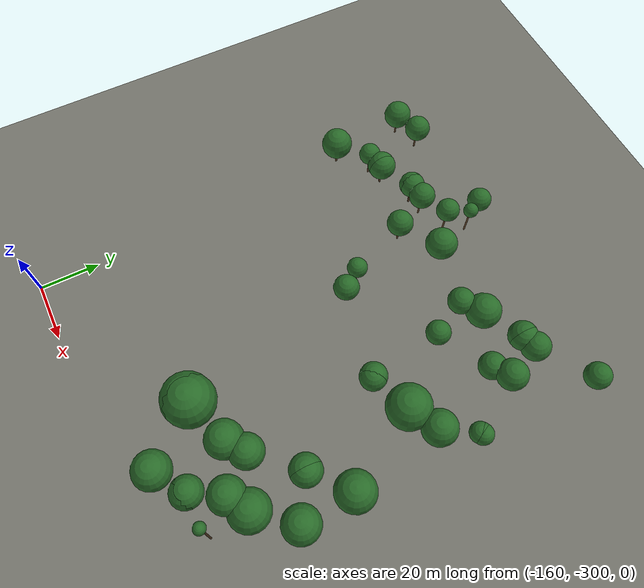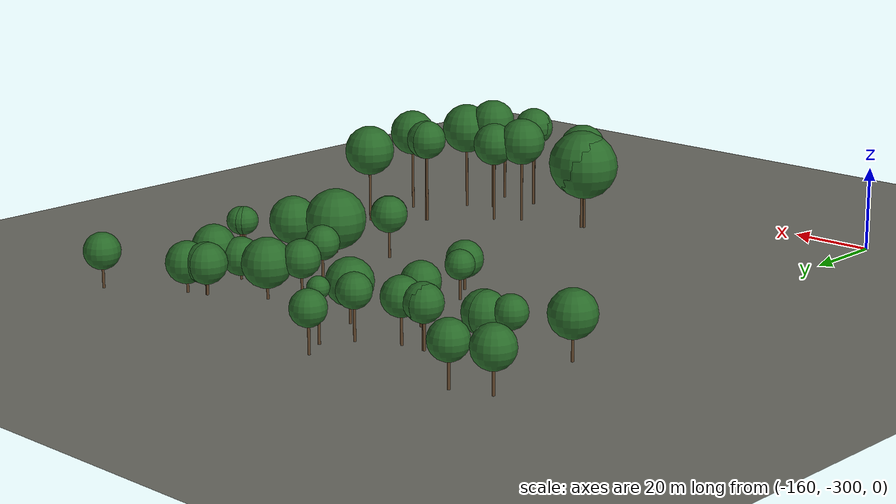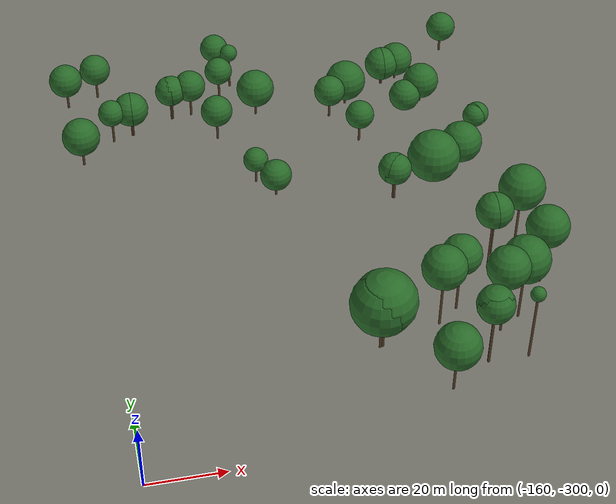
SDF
<sdf version="1.9">
 <world name="uav_arena_bk">
  <model name="ground_plane">
   <static>true</static>
   <link name="link">
    <collision name="collision">
     <geometry><plane><normal>0 0 1</normal><size>1200 1200</size></plane></geometry>
    </collision>
    <visual name="visual">
     <geometry><plane><normal>0 0 1</normal><size>1200 1200</size></plane></geometry>
     <material><ambient>0.35 0.35 0.33 1</ambient><diffuse>0.45 0.45 0.42 1</diffuse></material>
    </visual>
   </link>
  </model>
  <model name="tree_365">
   <static>true</static>
   <pose>-120.744 -154.964 0 0 0 0</pose>
   <link name="link">
    <collision name="trunk_collision">
     <pose>0 0 2.945 0 0 0</pose>
     <geometry><cylinder><radius>0.30</radius><length>5.890</length></cylinder></geometry>
    </collision>
    <visual name="trunk_visual">
     <pose>0 0 2.945 0 0 0</pose>
     <geometry><cylinder><radius>0.30</radius><length>5.890</length></cylinder></geometry>
     <material><ambient>0.25 0.18 0.11 1</ambient><diffuse>0.35 0.25 0.15 1</diffuse></material>
    </visual>
    <collision name="canopy_collision">
     <pose>0 0 9.890 0 0 0</pose>
     <geometry><sphere><radius>4.000</radius></sphere></geometry>
    </collision>
    <visual name="canopy_visual">
     <pose>0 0 9.890 0 0 0</pose>
     <geometry><sphere><radius>4.000</radius></sphere></geometry>
     <material><ambient>0.10 0.28 0.10 1</ambient><diffuse>0.16 0.42 0.16 1</diffuse></material>
     <plugin filename="gz-sim-label-system" name="gz::sim::systems::Label"><label>2</label></plugin>
    </visual>
   </link>
  </model>
  <model name="tree_366">
   <static>true</static>
   <pose>-51.749 -155.837 0 0 0 0</pose>
   <link name="link">
    <collision name="trunk_collision">
     <pose>0 0 2.195 0 0 0</pose>
     <geometry><cylinder><radius>0.30</radius><length>4.390</length></cylinder></geometry>
    </collision>
    <visual name="trunk_visual">
     <pose>0 0 2.195 0 0 0</pose>
     <geometry><cylinder><radius>0.30</radius><length>4.390</length></cylinder></geometry>
     <material><ambient>0.25 0.18 0.11 1</ambient><diffuse>0.35 0.25 0.15 1</diffuse></material>
    </visual>
    <collision name="canopy_collision">
     <pose>0 0 8.660 0 0 0</pose>
     <geometry><sphere><radius>4.270</radius></sphere></geometry>
    </collision>
    <visual name="canopy_visual">
     <pose>0 0 8.660 0 0 0</pose>
     <geometry><sphere><radius>4.270</radius></sphere></geometry>
     <material><ambient>0.10 0.28 0.10 1</ambient><diffuse>0.16 0.42 0.16 1</diffuse></material>
     <plugin filename="gz-sim-label-system" name="gz::sim::systems::Label"><label>2</label></plugin>
    </visual>
   </link>
  </model>
  <model name="tree_372">
   <static>true</static>
   <pose>-156.265 -158.772 0 0 0 0</pose>
   <link name="link">
    <collision name="trunk_collision">
     <pose>0 0 2.865 0 0 0</pose>
     <geometry><cylinder><radius>0.30</radius><length>5.730</length></cylinder></geometry>
    </collision>
    <visual name="trunk_visual">
     <pose>0 0 2.865 0 0 0</pose>
     <geometry><cylinder><radius>0.30</radius><length>5.730</length></cylinder></geometry>
     <material><ambient>0.25 0.18 0.11 1</ambient><diffuse>0.35 0.25 0.15 1</diffuse></material>
    </visual>
    <collision name="canopy_collision">
     <pose>0 0 10.100 0 0 0</pose>
     <geometry><sphere><radius>4.370</radius></sphere></geometry>
    </collision>
    <visual name="canopy_visual">
     <pose>0 0 10.100 0 0 0</pose>
     <geometry><sphere><radius>4.370</radius></sphere></geometry>
     <material><ambient>0.10 0.28 0.10 1</ambient><diffuse>0.16 0.42 0.16 1</diffuse></material>
     <plugin filename="gz-sim-label-system" name="gz::sim::systems::Label"><label>2</label></plugin>
    </visual>
   </link>
  </model>
  <model name="tree_376">
   <static>true</static>
   <pose>-117.277 -160.983 0 0 0 0</pose>
   <link name="link">
    <collision name="trunk_collision">
     <pose>0 0 4.850 0 0 0</pose>
     <geometry><cylinder><radius>0.30</radius><length>9.700</length></cylinder></geometry>
    </collision>
    <visual name="trunk_visual">
     <pose>0 0 4.850 0 0 0</pose>
     <geometry><cylinder><radius>0.30</radius><length>9.700</length></cylinder></geometry>
     <material><ambient>0.25 0.18 0.11 1</ambient><diffuse>0.35 0.25 0.15 1</diffuse></material>
    </visual>
    <collision name="canopy_collision">
     <pose>0 0 12.160 0 0 0</pose>
     <geometry><sphere><radius>2.460</radius></sphere></geometry>
    </collision>
    <visual name="canopy_visual">
     <pose>0 0 12.160 0 0 0</pose>
     <geometry><sphere><radius>2.460</radius></sphere></geometry>
     <material><ambient>0.10 0.28 0.10 1</ambient><diffuse>0.16 0.42 0.16 1</diffuse></material>
     <plugin filename="gz-sim-label-system" name="gz::sim::systems::Label"><label>2</label></plugin>
    </visual>
   </link>
  </model>
  <model name="tree_378">
   <static>true</static>
   <pose>-165.032 -161.974 0 0 0 0</pose>
   <link name="link">
    <collision name="trunk_collision">
     <pose>0 0 2.575 0 0 0</pose>
     <geometry><cylinder><radius>0.30</radius><length>5.150</length></cylinder></geometry>
    </collision>
    <visual name="trunk_visual">
     <pose>0 0 2.575 0 0 0</pose>
     <geometry><cylinder><radius>0.30</radius><length>5.150</length></cylinder></geometry>
     <material><ambient>0.25 0.18 0.11 1</ambient><diffuse>0.35 0.25 0.15 1</diffuse></material>
    </visual>
    <collision name="canopy_collision">
     <pose>0 0 9.850 0 0 0</pose>
     <geometry><sphere><radius>4.700</radius></sphere></geometry>
    </collision>
    <visual name="canopy_visual">
     <pose>0 0 9.850 0 0 0</pose>
     <geometry><sphere><radius>4.700</radius></sphere></geometry>
     <material><ambient>0.10 0.28 0.10 1</ambient><diffuse>0.16 0.42 0.16 1</diffuse></material>
     <plugin filename="gz-sim-label-system" name="gz::sim::systems::Label"><label>2</label></plugin>
    </visual>
   </link>
  </model>
  <model name="tree_380">
   <static>true</static>
   <pose>-68.307 -166.498 0 0 0 0</pose>
   <link name="link">
    <collision name="trunk_collision">
     <pose>0 0 1.075 0 0 0</pose>
     <geometry><cylinder><radius>0.30</radius><length>2.150</length></cylinder></geometry>
    </collision>
    <visual name="trunk_visual">
     <pose>0 0 1.075 0 0 0</pose>
     <geometry><cylinder><radius>0.30</radius><length>2.150</length></cylinder></geometry>
     <material><ambient>0.25 0.18 0.11 1</ambient><diffuse>0.35 0.25 0.15 1</diffuse></material>
    </visual>
    <collision name="canopy_collision">
     <pose>0 0 6.980 0 0 0</pose>
     <geometry><sphere><radius>4.830</radius></sphere></geometry>
    </collision>
    <visual name="canopy_visual">
     <pose>0 0 6.980 0 0 0</pose>
     <geometry><sphere><radius>4.830</radius></sphere></geometry>
     <material><ambient>0.10 0.28 0.10 1</ambient><diffuse>0.16 0.42 0.16 1</diffuse></material>
     <plugin filename="gz-sim-label-system" name="gz::sim::systems::Label"><label>2</label></plugin>
    </visual>
   </link>
  </model>
  <model name="tree_381">
   <static>true</static>
   <pose>-121.311 -167.211 0 0 0 0</pose>
   <link name="link">
    <collision name="trunk_collision">
     <pose>0 0 3.545 0 0 0</pose>
     <geometry><cylinder><radius>0.30</radius><length>7.090</length></cylinder></geometry>
    </collision>
    <visual name="trunk_visual">
     <pose>0 0 3.545 0 0 0</pose>
     <geometry><cylinder><radius>0.30</radius><length>7.090</length></cylinder></geometry>
     <material><ambient>0.25 0.18 0.11 1</ambient><diffuse>0.35 0.25 0.15 1</diffuse></material>
    </visual>
    <collision name="canopy_collision">
     <pose>0 0 11.000 0 0 0</pose>
     <geometry><sphere><radius>3.910</radius></sphere></geometry>
    </collision>
    <visual name="canopy_visual">
     <pose>0 0 11.000 0 0 0</pose>
     <geometry><sphere><radius>3.910</radius></sphere></geometry>
     <material><ambient>0.10 0.28 0.10 1</ambient><diffuse>0.16 0.42 0.16 1</diffuse></material>
     <plugin filename="gz-sim-label-system" name="gz::sim::systems::Label"><label>2</label></plugin>
    </visual>
   </link>
  </model>
  <model name="tree_382">
   <static>true</static>
   <pose>-73.066 -168.222 0 0 0 0</pose>
   <link name="link">
    <collision name="trunk_collision">
     <pose>0 0 1.285 0 0 0</pose>
     <geometry><cylinder><radius>0.30</radius><length>2.570</length></cylinder></geometry>
    </collision>
    <visual name="trunk_visual">
     <pose>0 0 1.285 0 0 0</pose>
     <geometry><cylinder><radius>0.30</radius><length>2.570</length></cylinder></geometry>
     <material><ambient>0.25 0.18 0.11 1</ambient><diffuse>0.35 0.25 0.15 1</diffuse></material>
    </visual>
    <collision name="canopy_collision">
     <pose>0 0 7.310 0 0 0</pose>
     <geometry><sphere><radius>4.740</radius></sphere></geometry>
    </collision>
    <visual name="canopy_visual">
     <pose>0 0 7.310 0 0 0</pose>
     <geometry><sphere><radius>4.740</radius></sphere></geometry>
     <material><ambient>0.10 0.28 0.10 1</ambient><diffuse>0.16 0.42 0.16 1</diffuse></material>
     <plugin filename="gz-sim-label-system" name="gz::sim::systems::Label"><label>2</label></plugin>
    </visual>
   </link>
  </model>
  <model name="tree_383">
   <static>true</static>
   <pose>-72.816 -168.224 0 0 0 0</pose>
   <link name="link">
    <collision name="trunk_collision">
     <pose>0 0 1.285 0 0 0</pose>
     <geometry><cylinder><radius>0.30</radius><length>2.570</length></cylinder></geometry>
    </collision>
    <visual name="trunk_visual">
     <pose>0 0 1.285 0 0 0</pose>
     <geometry><cylinder><radius>0.30</radius><length>2.570</length></cylinder></geometry>
     <material><ambient>0.25 0.18 0.11 1</ambient><diffuse>0.35 0.25 0.15 1</diffuse></material>
    </visual>
    <collision name="canopy_collision">
     <pose>0 0 7.310 0 0 0</pose>
     <geometry><sphere><radius>4.740</radius></sphere></geometry>
    </collision>
    <visual name="canopy_visual">
     <pose>0 0 7.310 0 0 0</pose>
     <geometry><sphere><radius>4.740</radius></sphere></geometry>
     <material><ambient>0.10 0.28 0.10 1</ambient><diffuse>0.16 0.42 0.16 1</diffuse></material>
     <plugin filename="gz-sim-label-system" name="gz::sim::systems::Label"><label>2</label></plugin>
    </visual>
   </link>
  </model>
  <model name="tree_389">
   <static>true</static>
   <pose>-130.336 -171.912 0 0 0 0</pose>
   <link name="link">
    <collision name="trunk_collision">
     <pose>0 0 3.080 0 0 0</pose>
     <geometry><cylinder><radius>0.30</radius><length>6.160</length></cylinder></geometry>
    </collision>
    <visual name="trunk_visual">
     <pose>0 0 3.080 0 0 0</pose>
     <geometry><cylinder><radius>0.30</radius><length>6.160</length></cylinder></geometry>
     <material><ambient>0.25 0.18 0.11 1</ambient><diffuse>0.35 0.25 0.15 1</diffuse></material>
    </visual>
    <collision name="canopy_collision">
     <pose>0 0 10.580 0 0 0</pose>
     <geometry><sphere><radius>4.420</radius></sphere></geometry>
    </collision>
    <visual name="canopy_visual">
     <pose>0 0 10.580 0 0 0</pose>
     <geometry><sphere><radius>4.420</radius></sphere></geometry>
     <material><ambient>0.10 0.28 0.10 1</ambient><diffuse>0.16 0.42 0.16 1</diffuse></material>
     <plugin filename="gz-sim-label-system" name="gz::sim::systems::Label"><label>2</label></plugin>
    </visual>
   </link>
  </model>
  <model name="tree_391">
   <static>true</static>
   <pose>-136.090 -172.631 0 0 0 0</pose>
   <link name="link">
    <collision name="trunk_collision">
     <pose>0 0 2.975 0 0 0</pose>
     <geometry><cylinder><radius>0.30</radius><length>5.950</length></cylinder></geometry>
    </collision>
    <visual name="trunk_visual">
     <pose>0 0 2.975 0 0 0</pose>
     <geometry><cylinder><radius>0.30</radius><length>5.950</length></cylinder></geometry>
     <material><ambient>0.25 0.18 0.11 1</ambient><diffuse>0.35 0.25 0.15 1</diffuse></material>
    </visual>
    <collision name="canopy_collision">
     <pose>0 0 10.210 0 0 0</pose>
     <geometry><sphere><radius>4.260</radius></sphere></geometry>
    </collision>
    <visual name="canopy_visual">
     <pose>0 0 10.210 0 0 0</pose>
     <geometry><sphere><radius>4.260</radius></sphere></geometry>
     <material><ambient>0.10 0.28 0.10 1</ambient><diffuse>0.16 0.42 0.16 1</diffuse></material>
     <plugin filename="gz-sim-label-system" name="gz::sim::systems::Label"><label>2</label></plugin>
    </visual>
   </link>
  </model>
  <model name="tree_392">
   <static>true</static>
   <pose>-135.840 -172.632 0 0 0 0</pose>
   <link name="link">
    <collision name="trunk_collision">
     <pose>0 0 3.005 0 0 0</pose>
     <geometry><cylinder><radius>0.30</radius><length>6.010</length></cylinder></geometry>
    </collision>
    <visual name="trunk_visual">
     <pose>0 0 3.005 0 0 0</pose>
     <geometry><cylinder><radius>0.30</radius><length>6.010</length></cylinder></geometry>
     <material><ambient>0.25 0.18 0.11 1</ambient><diffuse>0.35 0.25 0.15 1</diffuse></material>
    </visual>
    <collision name="canopy_collision">
     <pose>0 0 10.270 0 0 0</pose>
     <geometry><sphere><radius>4.260</radius></sphere></geometry>
    </collision>
    <visual name="canopy_visual">
     <pose>0 0 10.270 0 0 0</pose>
     <geometry><sphere><radius>4.260</radius></sphere></geometry>
     <material><ambient>0.10 0.28 0.10 1</ambient><diffuse>0.16 0.42 0.16 1</diffuse></material>
     <plugin filename="gz-sim-label-system" name="gz::sim::systems::Label"><label>2</label></plugin>
    </visual>
   </link>
  </model>
  <model name="tree_393">
   <static>true</static>
   <pose>-111.853 -175.012 0 0 0 0</pose>
   <link name="link">
    <collision name="trunk_collision">
     <pose>0 0 2.000 0 0 0</pose>
     <geometry><cylinder><radius>0.30</radius><length>4.000</length></cylinder></geometry>
    </collision>
    <visual name="trunk_visual">
     <pose>0 0 2.000 0 0 0</pose>
     <geometry><cylinder><radius>0.30</radius><length>4.000</length></cylinder></geometry>
     <material><ambient>0.25 0.18 0.11 1</ambient><diffuse>0.35 0.25 0.15 1</diffuse></material>
    </visual>
    <collision name="canopy_collision">
     <pose>0 0 9.320 0 0 0</pose>
     <geometry><sphere><radius>5.320</radius></sphere></geometry>
    </collision>
    <visual name="canopy_visual">
     <pose>0 0 9.320 0 0 0</pose>
     <geometry><sphere><radius>5.320</radius></sphere></geometry>
     <material><ambient>0.10 0.28 0.10 1</ambient><diffuse>0.16 0.42 0.16 1</diffuse></material>
     <plugin filename="gz-sim-label-system" name="gz::sim::systems::Label"><label>2</label></plugin>
    </visual>
   </link>
  </model>
  <model name="tree_394">
   <static>true</static>
   <pose>-85.354 -175.156 0 0 0 0</pose>
   <link name="link">
    <collision name="trunk_collision">
     <pose>0 0 1.310 0 0 0</pose>
     <geometry><cylinder><radius>0.30</radius><length>2.620</length></cylinder></geometry>
    </collision>
    <visual name="trunk_visual">
     <pose>0 0 1.310 0 0 0</pose>
     <geometry><cylinder><radius>0.30</radius><length>2.620</length></cylinder></geometry>
     <material><ambient>0.25 0.18 0.11 1</ambient><diffuse>0.35 0.25 0.15 1</diffuse></material>
    </visual>
    <collision name="canopy_collision">
     <pose>0 0 8.330 0 0 0</pose>
     <geometry><sphere><radius>5.710</radius></sphere></geometry>
    </collision>
    <visual name="canopy_visual">
     <pose>0 0 8.330 0 0 0</pose>
     <geometry><sphere><radius>5.710</radius></sphere></geometry>
     <material><ambient>0.10 0.28 0.10 1</ambient><diffuse>0.16 0.42 0.16 1</diffuse></material>
     <plugin filename="gz-sim-label-system" name="gz::sim::systems::Label"><label>2</label></plugin>
    </visual>
   </link>
  </model>
  <model name="tree_396">
   <static>true</static>
   <pose>-148.118 -177.816 0 0 0 0</pose>
   <link name="link">
    <collision name="trunk_collision">
     <pose>0 0 2.385 0 0 0</pose>
     <geometry><cylinder><radius>0.30</radius><length>4.770</length></cylinder></geometry>
    </collision>
    <visual name="trunk_visual">
     <pose>0 0 2.385 0 0 0</pose>
     <geometry><cylinder><radius>0.30</radius><length>4.770</length></cylinder></geometry>
     <material><ambient>0.25 0.18 0.11 1</ambient><diffuse>0.35 0.25 0.15 1</diffuse></material>
    </visual>
    <collision name="canopy_collision">
     <pose>0 0 9.520 0 0 0</pose>
     <geometry><sphere><radius>4.750</radius></sphere></geometry>
    </collision>
    <visual name="canopy_visual">
     <pose>0 0 9.520 0 0 0</pose>
     <geometry><sphere><radius>4.750</radius></sphere></geometry>
     <material><ambient>0.10 0.28 0.10 1</ambient><diffuse>0.16 0.42 0.16 1</diffuse></material>
     <plugin filename="gz-sim-label-system" name="gz::sim::systems::Label"><label>2</label></plugin>
    </visual>
   </link>
  </model>
  <model name="tree_397">
   <static>true</static>
   <pose>-147.868 -177.817 0 0 0 0</pose>
   <link name="link">
    <collision name="trunk_collision">
     <pose>0 0 2.385 0 0 0</pose>
     <geometry><cylinder><radius>0.30</radius><length>4.770</length></cylinder></geometry>
    </collision>
    <visual name="trunk_visual">
     <pose>0 0 2.385 0 0 0</pose>
     <geometry><cylinder><radius>0.30</radius><length>4.770</length></cylinder></geometry>
     <material><ambient>0.25 0.18 0.11 1</ambient><diffuse>0.35 0.25 0.15 1</diffuse></material>
    </visual>
    <collision name="canopy_collision">
     <pose>0 0 9.520 0 0 0</pose>
     <geometry><sphere><radius>4.750</radius></sphere></geometry>
    </collision>
    <visual name="canopy_visual">
     <pose>0 0 9.520 0 0 0</pose>
     <geometry><sphere><radius>4.750</radius></sphere></geometry>
     <material><ambient>0.10 0.28 0.10 1</ambient><diffuse>0.16 0.42 0.16 1</diffuse></material>
     <plugin filename="gz-sim-label-system" name="gz::sim::systems::Label"><label>2</label></plugin>
    </visual>
   </link>
  </model>
  <model name="tree_398">
   <static>true</static>
   <pose>-63.620 -178.273 0 0 0 0</pose>
   <link name="link">
    <collision name="trunk_collision">
     <pose>0 0 1.195 0 0 0</pose>
     <geometry><cylinder><radius>0.30</radius><length>2.390</length></cylinder></geometry>
    </collision>
    <visual name="trunk_visual">
     <pose>0 0 1.195 0 0 0</pose>
     <geometry><cylinder><radius>0.30</radius><length>2.390</length></cylinder></geometry>
     <material><ambient>0.25 0.18 0.11 1</ambient><diffuse>0.35 0.25 0.15 1</diffuse></material>
    </visual>
    <collision name="canopy_collision">
     <pose>0 0 7.450 0 0 0</pose>
     <geometry><sphere><radius>5.060</radius></sphere></geometry>
    </collision>
    <visual name="canopy_visual">
     <pose>0 0 7.450 0 0 0</pose>
     <geometry><sphere><radius>5.060</radius></sphere></geometry>
     <material><ambient>0.10 0.28 0.10 1</ambient><diffuse>0.16 0.42 0.16 1</diffuse></material>
     <plugin filename="gz-sim-label-system" name="gz::sim::systems::Label"><label>2</label></plugin>
    </visual>
   </link>
  </model>
  <model name="tree_399">
   <static>true</static>
   <pose>-153.627 -179.536 0 0 0 0</pose>
   <link name="link">
    <collision name="trunk_collision">
     <pose>0 0 3.355 0 0 0</pose>
     <geometry><cylinder><radius>0.30</radius><length>6.710</length></cylinder></geometry>
    </collision>
    <visual name="trunk_visual">
     <pose>0 0 3.355 0 0 0</pose>
     <geometry><cylinder><radius>0.30</radius><length>6.710</length></cylinder></geometry>
     <material><ambient>0.25 0.18 0.11 1</ambient><diffuse>0.35 0.25 0.15 1</diffuse></material>
    </visual>
    <collision name="canopy_collision">
     <pose>0 0 10.400 0 0 0</pose>
     <geometry><sphere><radius>3.690</radius></sphere></geometry>
    </collision>
    <visual name="canopy_visual">
     <pose>0 0 10.400 0 0 0</pose>
     <geometry><sphere><radius>3.690</radius></sphere></geometry>
     <material><ambient>0.10 0.28 0.10 1</ambient><diffuse>0.16 0.42 0.16 1</diffuse></material>
     <plugin filename="gz-sim-label-system" name="gz::sim::systems::Label"><label>2</label></plugin>
    </visual>
   </link>
  </model>
  <model name="tree_400">
   <static>true</static>
   <pose>-91.131 -180.124 0 0 0 0</pose>
   <link name="link">
    <collision name="trunk_collision">
     <pose>0 0 2.490 0 0 0</pose>
     <geometry><cylinder><radius>0.30</radius><length>4.980</length></cylinder></geometry>
    </collision>
    <visual name="trunk_visual">
     <pose>0 0 2.490 0 0 0</pose>
     <geometry><cylinder><radius>0.30</radius><length>4.980</length></cylinder></geometry>
     <material><ambient>0.25 0.18 0.11 1</ambient><diffuse>0.35 0.25 0.15 1</diffuse></material>
    </visual>
    <collision name="canopy_collision">
     <pose>0 0 9.350 0 0 0</pose>
     <geometry><sphere><radius>4.370</radius></sphere></geometry>
    </collision>
    <visual name="canopy_visual">
     <pose>0 0 9.350 0 0 0</pose>
     <geometry><sphere><radius>4.370</radius></sphere></geometry>
     <material><ambient>0.10 0.28 0.10 1</ambient><diffuse>0.16 0.42 0.16 1</diffuse></material>
     <plugin filename="gz-sim-label-system" name="gz::sim::systems::Label"><label>2</label></plugin>
    </visual>
   </link>
  </model>
  <model name="tree_402">
   <static>true</static>
   <pose>-69.138 -181.494 0 0 0 0</pose>
   <link name="link">
    <collision name="trunk_collision">
     <pose>0 0 0.500 0 0 0</pose>
     <geometry><cylinder><radius>0.30</radius><length>1.000</length></cylinder></geometry>
    </collision>
    <visual name="trunk_visual">
     <pose>0 0 0.500 0 0 0</pose>
     <geometry><cylinder><radius>0.30</radius><length>1.000</length></cylinder></geometry>
     <material><ambient>0.25 0.18 0.11 1</ambient><diffuse>0.35 0.25 0.15 1</diffuse></material>
    </visual>
    <collision name="canopy_collision">
     <pose>0 0 5.470 0 0 0</pose>
     <geometry><sphere><radius>4.470</radius></sphere></geometry>
    </collision>
    <visual name="canopy_visual">
     <pose>0 0 5.470 0 0 0</pose>
     <geometry><sphere><radius>4.470</radius></sphere></geometry>
     <material><ambient>0.10 0.28 0.10 1</ambient><diffuse>0.16 0.42 0.16 1</diffuse></material>
     <plugin filename="gz-sim-label-system" name="gz::sim::systems::Label"><label>2</label></plugin>
    </visual>
   </link>
  </model>
  <model name="tree_404">
   <static>true</static>
   <pose>-124.400 -183.694 0 0 0 0</pose>
   <link name="link">
    <collision name="trunk_collision">
     <pose>0 0 2.810 0 0 0</pose>
     <geometry><cylinder><radius>0.30</radius><length>5.620</length></cylinder></geometry>
    </collision>
    <visual name="trunk_visual">
     <pose>0 0 2.810 0 0 0</pose>
     <geometry><cylinder><radius>0.30</radius><length>5.620</length></cylinder></geometry>
     <material><ambient>0.25 0.18 0.11 1</ambient><diffuse>0.35 0.25 0.15 1</diffuse></material>
    </visual>
    <collision name="canopy_collision">
     <pose>0 0 10.050 0 0 0</pose>
     <geometry><sphere><radius>4.430</radius></sphere></geometry>
    </collision>
    <visual name="canopy_visual">
     <pose>0 0 10.050 0 0 0</pose>
     <geometry><sphere><radius>4.430</radius></sphere></geometry>
     <material><ambient>0.10 0.28 0.10 1</ambient><diffuse>0.16 0.42 0.16 1</diffuse></material>
     <plugin filename="gz-sim-label-system" name="gz::sim::systems::Label"><label>2</label></plugin>
    </visual>
   </link>
  </model>
  <model name="tree_406">
   <static>true</static>
   <pose>-162.922 -187.736 0 0 0 0</pose>
   <link name="link">
    <collision name="trunk_collision">
     <pose>0 0 2.445 0 0 0</pose>
     <geometry><cylinder><radius>0.30</radius><length>4.890</length></cylinder></geometry>
    </collision>
    <visual name="trunk_visual">
     <pose>0 0 2.445 0 0 0</pose>
     <geometry><cylinder><radius>0.30</radius><length>4.890</length></cylinder></geometry>
     <material><ambient>0.25 0.18 0.11 1</ambient><diffuse>0.35 0.25 0.15 1</diffuse></material>
    </visual>
    <collision name="canopy_collision">
     <pose>0 0 10.140 0 0 0</pose>
     <geometry><sphere><radius>5.250</radius></sphere></geometry>
    </collision>
    <visual name="canopy_visual">
     <pose>0 0 10.140 0 0 0</pose>
     <geometry><sphere><radius>5.250</radius></sphere></geometry>
     <material><ambient>0.10 0.28 0.10 1</ambient><diffuse>0.16 0.42 0.16 1</diffuse></material>
     <plugin filename="gz-sim-label-system" name="gz::sim::systems::Label"><label>2</label></plugin>
    </visual>
   </link>
  </model>
  <model name="tree_410">
   <static>true</static>
   <pose>-84.946 -192.158 0 0 0 0</pose>
   <link name="link">
    <collision name="trunk_collision">
     <pose>0 0 2.710 0 0 0</pose>
     <geometry><cylinder><radius>0.30</radius><length>5.420</length></cylinder></geometry>
    </collision>
    <visual name="trunk_visual">
     <pose>0 0 2.710 0 0 0</pose>
     <geometry><cylinder><radius>0.30</radius><length>5.420</length></cylinder></geometry>
     <material><ambient>0.25 0.18 0.11 1</ambient><diffuse>0.35 0.25 0.15 1</diffuse></material>
    </visual>
    <collision name="canopy_collision">
     <pose>0 0 9.420 0 0 0</pose>
     <geometry><sphere><radius>4.000</radius></sphere></geometry>
    </collision>
    <visual name="canopy_visual">
     <pose>0 0 9.420 0 0 0</pose>
     <geometry><sphere><radius>4.000</radius></sphere></geometry>
     <material><ambient>0.10 0.28 0.10 1</ambient><diffuse>0.16 0.42 0.16 1</diffuse></material>
     <plugin filename="gz-sim-label-system" name="gz::sim::systems::Label"><label>2</label></plugin>
    </visual>
   </link>
  </model>
  <model name="tree_412">
   <static>true</static>
   <pose>-51.968 -196.337 0 0 0 0</pose>
   <link name="link">
    <collision name="trunk_collision">
     <pose>0 0 2.310 0 0 0</pose>
     <geometry><cylinder><radius>0.30</radius><length>4.620</length></cylinder></geometry>
    </collision>
    <visual name="trunk_visual">
     <pose>0 0 2.310 0 0 0</pose>
     <geometry><cylinder><radius>0.30</radius><length>4.620</length></cylinder></geometry>
     <material><ambient>0.25 0.18 0.11 1</ambient><diffuse>0.35 0.25 0.15 1</diffuse></material>
    </visual>
    <collision name="canopy_collision">
     <pose>0 0 7.970 0 0 0</pose>
     <geometry><sphere><radius>3.350</radius></sphere></geometry>
    </collision>
    <visual name="canopy_visual">
     <pose>0 0 7.970 0 0 0</pose>
     <geometry><sphere><radius>3.350</radius></sphere></geometry>
     <material><ambient>0.10 0.28 0.10 1</ambient><diffuse>0.16 0.42 0.16 1</diffuse></material>
     <plugin filename="gz-sim-label-system" name="gz::sim::systems::Label"><label>2</label></plugin>
    </visual>
   </link>
  </model>
  <model name="tree_413">
   <static>true</static>
   <pose>-52.470 -196.584 0 0 0 0</pose>
   <link name="link">
    <collision name="trunk_collision">
     <pose>0 0 2.310 0 0 0</pose>
     <geometry><cylinder><radius>0.30</radius><length>4.620</length></cylinder></geometry>
    </collision>
    <visual name="trunk_visual">
     <pose>0 0 2.310 0 0 0</pose>
     <geometry><cylinder><radius>0.30</radius><length>4.620</length></cylinder></geometry>
     <material><ambient>0.25 0.18 0.11 1</ambient><diffuse>0.35 0.25 0.15 1</diffuse></material>
    </visual>
    <collision name="canopy_collision">
     <pose>0 0 7.970 0 0 0</pose>
     <geometry><sphere><radius>3.350</radius></sphere></geometry>
    </collision>
    <visual name="canopy_visual">
     <pose>0 0 7.970 0 0 0</pose>
     <geometry><sphere><radius>3.350</radius></sphere></geometry>
     <material><ambient>0.10 0.28 0.10 1</ambient><diffuse>0.16 0.42 0.16 1</diffuse></material>
     <plugin filename="gz-sim-label-system" name="gz::sim::systems::Label"><label>2</label></plugin>
    </visual>
   </link>
  </model>
  <model name="tree_414">
   <static>true</static>
   <pose>-52.721 -196.833 0 0 0 0</pose>
   <link name="link">
    <collision name="trunk_collision">
     <pose>0 0 2.310 0 0 0</pose>
     <geometry><cylinder><radius>0.30</radius><length>4.620</length></cylinder></geometry>
    </collision>
    <visual name="trunk_visual">
     <pose>0 0 2.310 0 0 0</pose>
     <geometry><cylinder><radius>0.30</radius><length>4.620</length></cylinder></geometry>
     <material><ambient>0.25 0.18 0.11 1</ambient><diffuse>0.35 0.25 0.15 1</diffuse></material>
    </visual>
    <collision name="canopy_collision">
     <pose>0 0 7.970 0 0 0</pose>
     <geometry><sphere><radius>3.350</radius></sphere></geometry>
    </collision>
    <visual name="canopy_visual">
     <pose>0 0 7.970 0 0 0</pose>
     <geometry><sphere><radius>3.350</radius></sphere></geometry>
     <material><ambient>0.10 0.28 0.10 1</ambient><diffuse>0.16 0.42 0.16 1</diffuse></material>
     <plugin filename="gz-sim-label-system" name="gz::sim::systems::Label"><label>2</label></plugin>
    </visual>
   </link>
  </model>
  <model name="tree_421">
   <static>true</static>
   <pose>-116.758 -203.736 0 0 0 0</pose>
   <link name="link">
    <collision name="trunk_collision">
     <pose>0 0 2.305 0 0 0</pose>
     <geometry><cylinder><radius>0.30</radius><length>4.610</length></cylinder></geometry>
    </collision>
    <visual name="trunk_visual">
     <pose>0 0 2.305 0 0 0</pose>
     <geometry><cylinder><radius>0.30</radius><length>4.610</length></cylinder></geometry>
     <material><ambient>0.25 0.18 0.11 1</ambient><diffuse>0.35 0.25 0.15 1</diffuse></material>
    </visual>
    <collision name="canopy_collision">
     <pose>0 0 8.010 0 0 0</pose>
     <geometry><sphere><radius>3.400</radius></sphere></geometry>
    </collision>
    <visual name="canopy_visual">
     <pose>0 0 8.010 0 0 0</pose>
     <geometry><sphere><radius>3.400</radius></sphere></geometry>
     <material><ambient>0.10 0.28 0.10 1</ambient><diffuse>0.16 0.42 0.16 1</diffuse></material>
     <plugin filename="gz-sim-label-system" name="gz::sim::systems::Label"><label>2</label></plugin>
    </visual>
   </link>
  </model>
  <model name="tree_422">
   <static>true</static>
   <pose>-59.274 -206.547 0 0 0 0</pose>
   <link name="link">
    <collision name="trunk_collision">
     <pose>0 0 0.825 0 0 0</pose>
     <geometry><cylinder><radius>0.30</radius><length>1.650</length></cylinder></geometry>
    </collision>
    <visual name="trunk_visual">
     <pose>0 0 0.825 0 0 0</pose>
     <geometry><cylinder><radius>0.30</radius><length>1.650</length></cylinder></geometry>
     <material><ambient>0.25 0.18 0.11 1</ambient><diffuse>0.35 0.25 0.15 1</diffuse></material>
    </visual>
    <collision name="canopy_collision">
     <pose>0 0 7.410 0 0 0</pose>
     <geometry><sphere><radius>5.760</radius></sphere></geometry>
    </collision>
    <visual name="canopy_visual">
     <pose>0 0 7.410 0 0 0</pose>
     <geometry><sphere><radius>5.760</radius></sphere></geometry>
     <material><ambient>0.10 0.28 0.10 1</ambient><diffuse>0.16 0.42 0.16 1</diffuse></material>
     <plugin filename="gz-sim-label-system" name="gz::sim::systems::Label"><label>2</label></plugin>
    </visual>
   </link>
  </model>
  <model name="tree_424">
   <static>true</static>
   <pose>-112.292 -210.010 0 0 0 0</pose>
   <link name="link">
    <collision name="trunk_collision">
     <pose>0 0 1.430 0 0 0</pose>
     <geometry><cylinder><radius>0.30</radius><length>2.860</length></cylinder></geometry>
    </collision>
    <visual name="trunk_visual">
     <pose>0 0 1.430 0 0 0</pose>
     <geometry><cylinder><radius>0.30</radius><length>2.860</length></cylinder></geometry>
     <material><ambient>0.25 0.18 0.11 1</ambient><diffuse>0.35 0.25 0.15 1</diffuse></material>
    </visual>
    <collision name="canopy_collision">
     <pose>0 0 7.160 0 0 0</pose>
     <geometry><sphere><radius>4.300</radius></sphere></geometry>
    </collision>
    <visual name="canopy_visual">
     <pose>0 0 7.160 0 0 0</pose>
     <geometry><sphere><radius>4.300</radius></sphere></geometry>
     <material><ambient>0.10 0.28 0.10 1</ambient><diffuse>0.16 0.42 0.16 1</diffuse></material>
     <plugin filename="gz-sim-label-system" name="gz::sim::systems::Label"><label>2</label></plugin>
    </visual>
   </link>
  </model>
  <model name="tree_425">
   <static>true</static>
   <pose>-68.552 -211.747 0 0 0 0</pose>
   <link name="link">
    <collision name="trunk_collision">
     <pose>0 0 0.500 0 0 0</pose>
     <geometry><cylinder><radius>0.30</radius><length>1.000</length></cylinder></geometry>
    </collision>
    <visual name="trunk_visual">
     <pose>0 0 0.500 0 0 0</pose>
     <geometry><cylinder><radius>0.30</radius><length>1.000</length></cylinder></geometry>
     <material><ambient>0.25 0.18 0.11 1</ambient><diffuse>0.35 0.25 0.15 1</diffuse></material>
    </visual>
    <collision name="canopy_collision">
     <pose>0 0 8.270 0 0 0</pose>
     <geometry><sphere><radius>7.270</radius></sphere></geometry>
    </collision>
    <visual name="canopy_visual">
     <pose>0 0 8.270 0 0 0</pose>
     <geometry><sphere><radius>7.270</radius></sphere></geometry>
     <material><ambient>0.10 0.28 0.10 1</ambient><diffuse>0.16 0.42 0.16 1</diffuse></material>
     <plugin filename="gz-sim-label-system" name="gz::sim::systems::Label"><label>2</label></plugin>
    </visual>
   </link>
  </model>
  <model name="tree_426">
   <static>true</static>
   <pose>-81.081 -217.179 0 0 0 0</pose>
   <link name="link">
    <collision name="trunk_collision">
     <pose>0 0 3.125 0 0 0</pose>
     <geometry><cylinder><radius>0.30</radius><length>6.250</length></cylinder></geometry>
    </collision>
    <visual name="trunk_visual">
     <pose>0 0 3.125 0 0 0</pose>
     <geometry><cylinder><radius>0.30</radius><length>6.250</length></cylinder></geometry>
     <material><ambient>0.25 0.18 0.11 1</ambient><diffuse>0.35 0.25 0.15 1</diffuse></material>
    </visual>
    <collision name="canopy_collision">
     <pose>0 0 10.620 0 0 0</pose>
     <geometry><sphere><radius>4.370</radius></sphere></geometry>
    </collision>
    <visual name="canopy_visual">
     <pose>0 0 10.620 0 0 0</pose>
     <geometry><sphere><radius>4.370</radius></sphere></geometry>
     <material><ambient>0.10 0.28 0.10 1</ambient><diffuse>0.16 0.42 0.16 1</diffuse></material>
     <plugin filename="gz-sim-label-system" name="gz::sim::systems::Label"><label>2</label></plugin>
    </visual>
   </link>
  </model>
  <model name="tree_427">
   <static>true</static>
   <pose>-80.832 -217.430 0 0 0 0</pose>
   <link name="link">
    <collision name="trunk_collision">
     <pose>0 0 3.115 0 0 0</pose>
     <geometry><cylinder><radius>0.30</radius><length>6.230</length></cylinder></geometry>
    </collision>
    <visual name="trunk_visual">
     <pose>0 0 3.115 0 0 0</pose>
     <geometry><cylinder><radius>0.30</radius><length>6.230</length></cylinder></geometry>
     <material><ambient>0.25 0.18 0.11 1</ambient><diffuse>0.35 0.25 0.15 1</diffuse></material>
    </visual>
    <collision name="canopy_collision">
     <pose>0 0 10.600 0 0 0</pose>
     <geometry><sphere><radius>4.370</radius></sphere></geometry>
    </collision>
    <visual name="canopy_visual">
     <pose>0 0 10.600 0 0 0</pose>
     <geometry><sphere><radius>4.370</radius></sphere></geometry>
     <material><ambient>0.10 0.28 0.10 1</ambient><diffuse>0.16 0.42 0.16 1</diffuse></material>
     <plugin filename="gz-sim-label-system" name="gz::sim::systems::Label"><label>2</label></plugin>
    </visual>
   </link>
  </model>
  <model name="tree_435">
   <static>true</static>
   <pose>-52.697 -238.583 0 0 0 0</pose>
   <link name="link">
    <collision name="trunk_collision">
     <pose>0 0 5.980 0 0 0</pose>
     <geometry><cylinder><radius>0.30</radius><length>11.960</length></cylinder></geometry>
    </collision>
    <visual name="trunk_visual">
     <pose>0 0 5.980 0 0 0</pose>
     <geometry><cylinder><radius>0.30</radius><length>11.960</length></cylinder></geometry>
     <material><ambient>0.25 0.18 0.11 1</ambient><diffuse>0.35 0.25 0.15 1</diffuse></material>
    </visual>
    <collision name="canopy_collision">
     <pose>0 0 18.090 0 0 0</pose>
     <geometry><sphere><radius>6.130</radius></sphere></geometry>
    </collision>
    <visual name="canopy_visual">
     <pose>0 0 18.090 0 0 0</pose>
     <geometry><sphere><radius>6.130</radius></sphere></geometry>
     <material><ambient>0.10 0.28 0.10 1</ambient><diffuse>0.16 0.42 0.16 1</diffuse></material>
     <plugin filename="gz-sim-label-system" name="gz::sim::systems::Label"><label>2</label></plugin>
    </visual>
   </link>
  </model>
  <model name="tree_445">
   <static>true</static>
   <pose>-63.249 -248.276 0 0 0 0</pose>
   <link name="link">
    <collision name="trunk_collision">
     <pose>0 0 8.030 0 0 0</pose>
     <geometry><cylinder><radius>0.30</radius><length>16.060</length></cylinder></geometry>
    </collision>
    <visual name="trunk_visual">
     <pose>0 0 8.030 0 0 0</pose>
     <geometry><cylinder><radius>0.30</radius><length>16.060</length></cylinder></geometry>
     <material><ambient>0.25 0.18 0.11 1</ambient><diffuse>0.35 0.25 0.15 1</diffuse></material>
    </visual>
    <collision name="canopy_collision">
     <pose>0 0 20.810 0 0 0</pose>
     <geometry><sphere><radius>4.750</radius></sphere></geometry>
    </collision>
    <visual name="canopy_visual">
     <pose>0 0 20.810 0 0 0</pose>
     <geometry><sphere><radius>4.750</radius></sphere></geometry>
     <material><ambient>0.10 0.28 0.10 1</ambient><diffuse>0.16 0.42 0.16 1</diffuse></material>
     <plugin filename="gz-sim-label-system" name="gz::sim::systems::Label"><label>2</label></plugin>
    </visual>
   </link>
  </model>
  <model name="tree_446">
   <static>true</static>
   <pose>-62.999 -248.277 0 0 0 0</pose>
   <link name="link">
    <collision name="trunk_collision">
     <pose>0 0 8.030 0 0 0</pose>
     <geometry><cylinder><radius>0.30</radius><length>16.060</length></cylinder></geometry>
    </collision>
    <visual name="trunk_visual">
     <pose>0 0 8.030 0 0 0</pose>
     <geometry><cylinder><radius>0.30</radius><length>16.060</length></cylinder></geometry>
     <material><ambient>0.25 0.18 0.11 1</ambient><diffuse>0.35 0.25 0.15 1</diffuse></material>
    </visual>
    <collision name="canopy_collision">
     <pose>0 0 20.810 0 0 0</pose>
     <geometry><sphere><radius>4.750</radius></sphere></geometry>
    </collision>
    <visual name="canopy_visual">
     <pose>0 0 20.810 0 0 0</pose>
     <geometry><sphere><radius>4.750</radius></sphere></geometry>
     <material><ambient>0.10 0.28 0.10 1</ambient><diffuse>0.16 0.42 0.16 1</diffuse></material>
     <plugin filename="gz-sim-label-system" name="gz::sim::systems::Label"><label>2</label></plugin>
    </visual>
   </link>
  </model>
  <model name="tree_449">
   <static>true</static>
   <pose>-51.288 -255.341 0 0 0 0</pose>
   <link name="link">
    <collision name="trunk_collision">
     <pose>0 0 7.120 0 0 0</pose>
     <geometry><cylinder><radius>0.30</radius><length>14.240</length></cylinder></geometry>
    </collision>
    <visual name="trunk_visual">
     <pose>0 0 7.120 0 0 0</pose>
     <geometry><cylinder><radius>0.30</radius><length>14.240</length></cylinder></geometry>
     <material><ambient>0.25 0.18 0.11 1</ambient><diffuse>0.35 0.25 0.15 1</diffuse></material>
    </visual>
    <collision name="canopy_collision">
     <pose>0 0 19.830 0 0 0</pose>
     <geometry><sphere><radius>5.590</radius></sphere></geometry>
    </collision>
    <visual name="canopy_visual">
     <pose>0 0 19.830 0 0 0</pose>
     <geometry><sphere><radius>5.590</radius></sphere></geometry>
     <material><ambient>0.10 0.28 0.10 1</ambient><diffuse>0.16 0.42 0.16 1</diffuse></material>
     <plugin filename="gz-sim-label-system" name="gz::sim::systems::Label"><label>2</label></plugin>
    </visual>
   </link>
  </model>
  <model name="tree_450">
   <static>true</static>
   <pose>-75.065 -260.462 0 0 0 0</pose>
   <link name="link">
    <collision name="trunk_collision">
     <pose>0 0 7.125 0 0 0</pose>
     <geometry><cylinder><radius>0.30</radius><length>14.250</length></cylinder></geometry>
    </collision>
    <visual name="trunk_visual">
     <pose>0 0 7.125 0 0 0</pose>
     <geometry><cylinder><radius>0.30</radius><length>14.250</length></cylinder></geometry>
     <material><ambient>0.25 0.18 0.11 1</ambient><diffuse>0.35 0.25 0.15 1</diffuse></material>
    </visual>
    <collision name="canopy_collision">
     <pose>0 0 19.470 0 0 0</pose>
     <geometry><sphere><radius>5.220</radius></sphere></geometry>
    </collision>
    <visual name="canopy_visual">
     <pose>0 0 19.470 0 0 0</pose>
     <geometry><sphere><radius>5.220</radius></sphere></geometry>
     <material><ambient>0.10 0.28 0.10 1</ambient><diffuse>0.16 0.42 0.16 1</diffuse></material>
     <plugin filename="gz-sim-label-system" name="gz::sim::systems::Label"><label>2</label></plugin>
    </visual>
   </link>
  </model>
  <model name="tree_451">
   <static>true</static>
   <pose>-80.588 -264.682 0 0 0 0</pose>
   <link name="link">
    <collision name="trunk_collision">
     <pose>0 0 7.265 0 0 0</pose>
     <geometry><cylinder><radius>0.30</radius><length>14.530</length></cylinder></geometry>
    </collision>
    <visual name="trunk_visual">
     <pose>0 0 7.265 0 0 0</pose>
     <geometry><cylinder><radius>0.30</radius><length>14.530</length></cylinder></geometry>
     <material><ambient>0.25 0.18 0.11 1</ambient><diffuse>0.35 0.25 0.15 1</diffuse></material>
    </visual>
    <collision name="canopy_collision">
     <pose>0 0 20.280 0 0 0</pose>
     <geometry><sphere><radius>5.750</radius></sphere></geometry>
    </collision>
    <visual name="canopy_visual">
     <pose>0 0 20.280 0 0 0</pose>
     <geometry><sphere><radius>5.750</radius></sphere></geometry>
     <material><ambient>0.10 0.28 0.10 1</ambient><diffuse>0.16 0.42 0.16 1</diffuse></material>
     <plugin filename="gz-sim-label-system" name="gz::sim::systems::Label"><label>2</label></plugin>
    </visual>
   </link>
  </model>
  <model name="tree_452">
   <static>true</static>
   <pose>-60.346 -266.042 0 0 0 0</pose>
   <link name="link">
    <collision name="trunk_collision">
     <pose>0 0 7.175 0 0 0</pose>
     <geometry><cylinder><radius>0.30</radius><length>14.350</length></cylinder></geometry>
    </collision>
    <visual name="trunk_visual">
     <pose>0 0 7.175 0 0 0</pose>
     <geometry><cylinder><radius>0.30</radius><length>14.350</length></cylinder></geometry>
     <material><ambient>0.25 0.18 0.11 1</ambient><diffuse>0.35 0.25 0.15 1</diffuse></material>
    </visual>
    <collision name="canopy_collision">
     <pose>0 0 20.530 0 0 0</pose>
     <geometry><sphere><radius>6.180</radius></sphere></geometry>
    </collision>
    <visual name="canopy_visual">
     <pose>0 0 20.530 0 0 0</pose>
     <geometry><sphere><radius>6.180</radius></sphere></geometry>
     <material><ambient>0.10 0.28 0.10 1</ambient><diffuse>0.16 0.42 0.16 1</diffuse></material>
     <plugin filename="gz-sim-label-system" name="gz::sim::systems::Label"><label>2</label></plugin>
    </visual>
   </link>
  </model>
  <model name="tree_453">
   <static>true</static>
   <pose>-96.364 -269.347 0 0 0 0</pose>
   <link name="link">
    <collision name="trunk_collision">
     <pose>0 0 4.080 0 0 0</pose>
     <geometry><cylinder><radius>0.30</radius><length>8.160</length></cylinder></geometry>
    </collision>
    <visual name="trunk_visual">
     <pose>0 0 4.080 0 0 0</pose>
     <geometry><cylinder><radius>0.30</radius><length>8.160</length></cylinder></geometry>
     <material><ambient>0.25 0.18 0.11 1</ambient><diffuse>0.35 0.25 0.15 1</diffuse></material>
    </visual>
    <collision name="canopy_collision">
     <pose>0 0 16.330 0 0 0</pose>
     <geometry><sphere><radius>8.170</radius></sphere></geometry>
    </collision>
    <visual name="canopy_visual">
     <pose>0 0 16.330 0 0 0</pose>
     <geometry><sphere><radius>8.170</radius></sphere></geometry>
     <material><ambient>0.10 0.28 0.10 1</ambient><diffuse>0.16 0.42 0.16 1</diffuse></material>
     <plugin filename="gz-sim-label-system" name="gz::sim::systems::Label"><label>2</label></plugin>
    </visual>
   </link>
  </model>
  <model name="tree_454">
   <static>true</static>
   <pose>-97.115 -269.593 0 0 0 0</pose>
   <link name="link">
    <collision name="trunk_collision">
     <pose>0 0 3.825 0 0 0</pose>
     <geometry><cylinder><radius>0.30</radius><length>7.650</length></cylinder></geometry>
    </collision>
    <visual name="trunk_visual">
     <pose>0 0 3.825 0 0 0</pose>
     <geometry><cylinder><radius>0.30</radius><length>7.650</length></cylinder></geometry>
     <material><ambient>0.25 0.18 0.11 1</ambient><diffuse>0.35 0.25 0.15 1</diffuse></material>
    </visual>
    <collision name="canopy_collision">
     <pose>0 0 15.820 0 0 0</pose>
     <geometry><sphere><radius>8.170</radius></sphere></geometry>
    </collision>
    <visual name="canopy_visual">
     <pose>0 0 15.820 0 0 0</pose>
     <geometry><sphere><radius>8.170</radius></sphere></geometry>
     <material><ambient>0.10 0.28 0.10 1</ambient><diffuse>0.16 0.42 0.16 1</diffuse></material>
     <plugin filename="gz-sim-label-system" name="gz::sim::systems::Label"><label>2</label></plugin>
    </visual>
   </link>
  </model>
  <model name="tree_455">
   <static>true</static>
   <pose>-66.116 -269.761 0 0 0 0</pose>
   <link name="link">
    <collision name="trunk_collision">
     <pose>0 0 8.530 0 0 0</pose>
     <geometry><cylinder><radius>0.30</radius><length>17.060</length></cylinder></geometry>
    </collision>
    <visual name="trunk_visual">
     <pose>0 0 8.530 0 0 0</pose>
     <geometry><cylinder><radius>0.30</radius><length>17.060</length></cylinder></geometry>
     <material><ambient>0.25 0.18 0.11 1</ambient><diffuse>0.35 0.25 0.15 1</diffuse></material>
    </visual>
    <collision name="canopy_collision">
     <pose>0 0 22.560 0 0 0</pose>
     <geometry><sphere><radius>5.500</radius></sphere></geometry>
    </collision>
    <visual name="canopy_visual">
     <pose>0 0 22.560 0 0 0</pose>
     <geometry><sphere><radius>5.500</radius></sphere></geometry>
     <material><ambient>0.10 0.28 0.10 1</ambient><diffuse>0.16 0.42 0.16 1</diffuse></material>
     <plugin filename="gz-sim-label-system" name="gz::sim::systems::Label"><label>2</label></plugin>
    </visual>
   </link>
  </model>
  <model name="tree_456">
   <static>true</static>
   <pose>-71.916 -278.979 0 0 0 0</pose>
   <link name="link">
    <collision name="trunk_collision">
     <pose>0 0 7.930 0 0 0</pose>
     <geometry><cylinder><radius>0.30</radius><length>15.860</length></cylinder></geometry>
    </collision>
    <visual name="trunk_visual">
     <pose>0 0 7.930 0 0 0</pose>
     <geometry><cylinder><radius>0.30</radius><length>15.860</length></cylinder></geometry>
     <material><ambient>0.25 0.18 0.11 1</ambient><diffuse>0.35 0.25 0.15 1</diffuse></material>
    </visual>
    <collision name="canopy_collision">
     <pose>0 0 20.610 0 0 0</pose>
     <geometry><sphere><radius>4.750</radius></sphere></geometry>
    </collision>
    <visual name="canopy_visual">
     <pose>0 0 20.610 0 0 0</pose>
     <geometry><sphere><radius>4.750</radius></sphere></geometry>
     <material><ambient>0.10 0.28 0.10 1</ambient><diffuse>0.16 0.42 0.16 1</diffuse></material>
     <plugin filename="gz-sim-label-system" name="gz::sim::systems::Label"><label>2</label></plugin>
    </visual>
   </link>
  </model>
  <model name="tree_457">
   <static>true</static>
   <pose>-71.917 -279.229 0 0 0 0</pose>
   <link name="link">
    <collision name="trunk_collision">
     <pose>0 0 7.855 0 0 0</pose>
     <geometry><cylinder><radius>0.30</radius><length>15.710</length></cylinder></geometry>
    </collision>
    <visual name="trunk_visual">
     <pose>0 0 7.855 0 0 0</pose>
     <geometry><cylinder><radius>0.30</radius><length>15.710</length></cylinder></geometry>
     <material><ambient>0.25 0.18 0.11 1</ambient><diffuse>0.35 0.25 0.15 1</diffuse></material>
    </visual>
    <collision name="canopy_collision">
     <pose>0 0 20.460 0 0 0</pose>
     <geometry><sphere><radius>4.750</radius></sphere></geometry>
    </collision>
    <visual name="canopy_visual">
     <pose>0 0 20.460 0 0 0</pose>
     <geometry><sphere><radius>4.750</radius></sphere></geometry>
     <material><ambient>0.10 0.28 0.10 1</ambient><diffuse>0.16 0.42 0.16 1</diffuse></material>
     <plugin filename="gz-sim-label-system" name="gz::sim::systems::Label"><label>2</label></plugin>
    </visual>
   </link>
  </model>
  <model name="tree_458">
   <static>true</static>
   <pose>-61.667 -279.285 0 0 0 0</pose>
   <link name="link">
    <collision name="trunk_collision">
     <pose>0 0 10.110 0 0 0</pose>
     <geometry><cylinder><radius>0.30</radius><length>20.220</length></cylinder></geometry>
    </collision>
    <visual name="trunk_visual">
     <pose>0 0 10.110 0 0 0</pose>
     <geometry><cylinder><radius>0.30</radius><length>20.220</length></cylinder></geometry>
     <material><ambient>0.25 0.18 0.11 1</ambient><diffuse>0.35 0.25 0.15 1</diffuse></material>
    </visual>
    <collision name="canopy_collision">
     <pose>0 0 22.120 0 0 0</pose>
     <geometry><sphere><radius>1.900</radius></sphere></geometry>
    </collision>
    <visual name="canopy_visual">
     <pose>0 0 22.120 0 0 0</pose>
     <geometry><sphere><radius>1.900</radius></sphere></geometry>
     <material><ambient>0.10 0.28 0.10 1</ambient><diffuse>0.16 0.42 0.16 1</diffuse></material>
     <plugin filename="gz-sim-label-system" name="gz::sim::systems::Label"><label>2</label></plugin>
    </visual>
   </link>
  </model>
  <model name="tree_459">
   <static>true</static>
   <pose>-82.703 -285.921 0 0 0 0</pose>
   <link name="link">
    <collision name="trunk_collision">
     <pose>0 0 4.820 0 0 0</pose>
     <geometry><cylinder><radius>0.30</radius><length>9.640</length></cylinder></geometry>
    </collision>
    <visual name="trunk_visual">
     <pose>0 0 4.820 0 0 0</pose>
     <geometry><cylinder><radius>0.30</radius><length>9.640</length></cylinder></geometry>
     <material><ambient>0.25 0.18 0.11 1</ambient><diffuse>0.35 0.25 0.15 1</diffuse></material>
    </visual>
    <collision name="canopy_collision">
     <pose>0 0 15.540 0 0 0</pose>
     <geometry><sphere><radius>5.900</radius></sphere></geometry>
    </collision>
    <visual name="canopy_visual">
     <pose>0 0 15.540 0 0 0</pose>
     <geometry><sphere><radius>5.900</radius></sphere></geometry>
     <material><ambient>0.10 0.28 0.10 1</ambient><diffuse>0.16 0.42 0.16 1</diffuse></material>
     <plugin filename="gz-sim-label-system" name="gz::sim::systems::Label"><label>2</label></plugin>
    </visual>
   </link>
  </model>
 </world>
</sdf>
